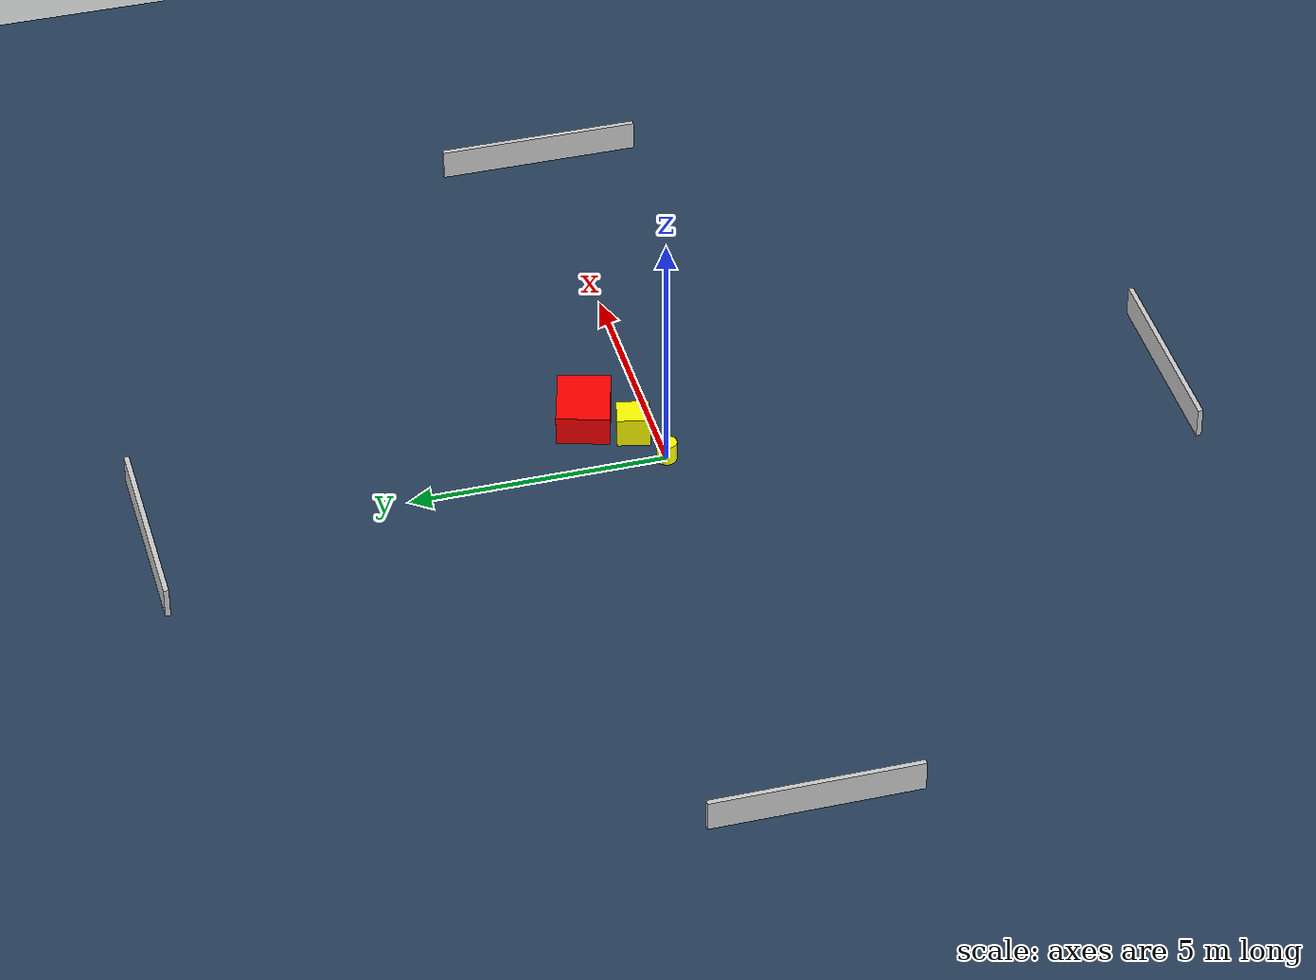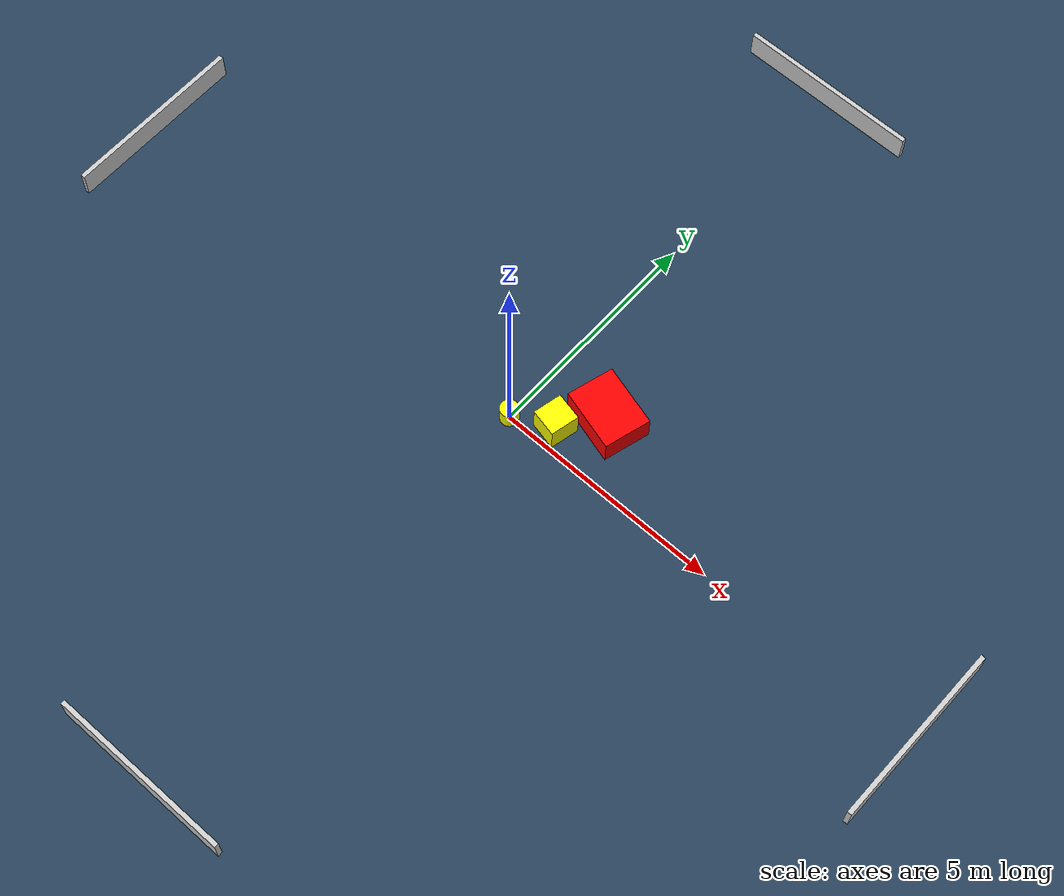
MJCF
<?xml version="1.0" ?>
<mujoco model="generated_environment">
  <option timestep="0.01" integrator="RK4" cone="elliptic"/>
  <default>
    <geom density="1"/>
  </default>
  <asset>
    <texture builtin="gradient" height="3072" name="skybox" rgb1="0.3 0.5 0.7" rgb2="0 0 0" type="skybox" width="512"/>
    <texture builtin="checker" height="300" name="groundplane" rgb1="0.2 0.3 0.4" rgb2="0.1 0.2 0.3" type="2d" width="300"/>
    <material name="groundplane" reflectance="0.2" texrepeat="5 5" texture="groundplane"/>
  </asset>
  <worldbody>
    <light dir="0 0 -1" directional="true" pos="0 0 1.5"/>
    <geom condim="3" friction="0.5 0.005 0.001" material="groundplane" name="floor" pos="0 0 0" size="0 0 0.05" type="plane"/>
    <body name="walls">
      <geom name="wall_1" condim="4" pos="-10.0 0.0 0.3" rgba="0.800000011920929 0.800000011920929 0.800000011920929 1.0" size="0.05 2.0 0.3" type="box"/>
      <geom name="wall_2" condim="4" pos="10.0 0.0 0.3" rgba="0.800000011920929 0.800000011920929 0.800000011920929 1.0" size="0.05 2.0 0.3" type="box"/>
      <geom name="wall_3" condim="4" pos="0.0 -10.0 0.3" rgba="0.800000011920929 0.800000011920929 0.800000011920929 1.0" size="2.0 0.05 0.3" type="box"/>
      <geom name="wall_4" condim="4" pos="0.0 10.0 0.3" rgba="0.800000011920929 0.800000011920929 0.800000011920929 1.0" size="2.0 0.05 0.3" type="box"/>
    </body>
    <body name="robot">
      <joint name="joint_x" type="slide" pos="0 0 0" axis="1 0 0"/>
      <joint name="joint_y" type="slide" pos="0 0 0" axis="0 1 0"/>
      <geom name="robot" type="cylinder" pos="0.0 0.0 0.2" size="0.2 0.2 0.0" mass="5.0" friction="1.0 0.005 0.0001" condim="4" rgba="1.0 1.0 0.0 1.0"/>
    </body>
    <body name="obstacle_1_movable">
      <geom name="obstacle_1_movable" condim="4" pos="0.8316719129402699 0.436375754099768 0.3" euler="0 0 167.45127929103037" friction="0.0 0.005 0.001" rgba="1.0 1.0 0.0 1.0" size="0.29926673009531746 0.3170551599689767 0.3" type="box" mass="0.1"/>
      <joint type="free"/>
    </body>
    <body name="obstacle_2_static">
      <geom name="obstacle_2_static" condim="4" pos="1.4921970902258173 1.2405064766975737 0.3" euler="0 0 344.1644135701363" friction="0.0 0.005 0.001" rgba="1.0 0.0 0.0 1.0" size="0.6770976004961677 0.5146188204470268 0.3" type="box"/>
    </body>
  </worldbody>
  <actuator>
    <motor name="actuator_x" joint="joint_x" gear="1" ctrlrange="-1 1"/>
    <motor name="actuator_y" joint="joint_y" gear="1" ctrlrange="-1 1"/>
  </actuator>
</mujoco>
